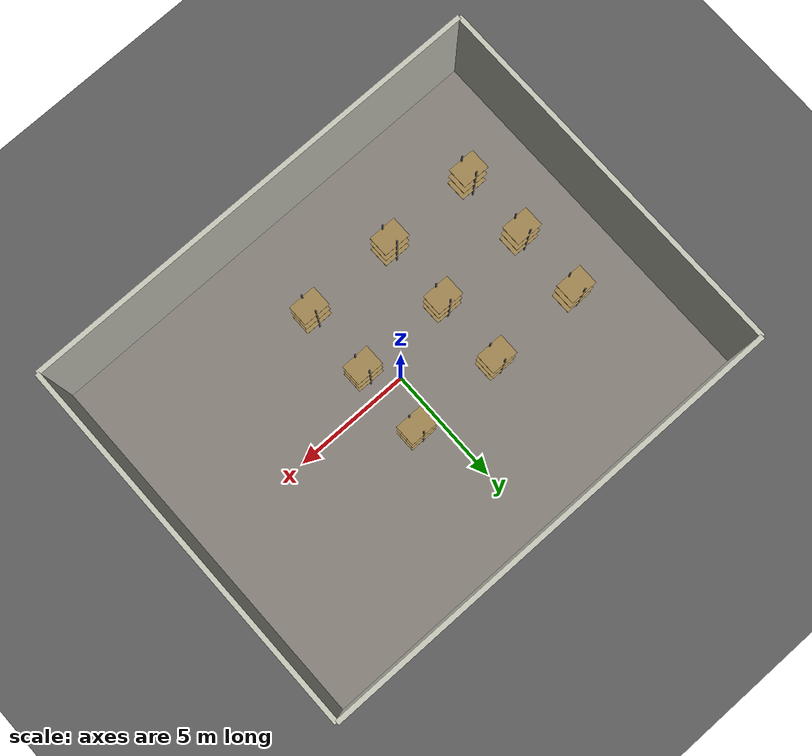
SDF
<?xml version="1.0" ?>
<sdf version="1.8">
  <world name="kiwi_world">

    <!--- physics -->
    <gravity>0 0 -9.81</gravity>
    <physics name="default_physics" type="ode">
      <max_step_size>0.001</max_step_size>
      <real_time_factor>1.0</real_time_factor>
      <real_time_update_rate>1000</real_time_update_rate>
      <ode>
        <solver>
          <type>quick</type>
          <iters>50</iters>
        </solver>
      </ode>
    </physics>

    <!-- plugins  -->
    <plugin filename="gz-sim-physics-system" name="gz::sim::systems::Physics"/>
    <plugin filename="gz-sim-scene-broadcaster-system" name="gz::sim::systems::SceneBroadcaster"/>
    <plugin filename="gz-sim-user-commands-system" name="gz::sim::systems::UserCommands"/>
    <plugin filename="gz-sim-sensors-system" name="gz::sim::systems::Sensors"/>
    <plugin filename="gz-sim-contact-system" name="gz::sim::systems::Contact"/>

    <!-- scene  -->
    <scene>
      <ambient>0.4 0.4 0.4 1</ambient>
      <background>0.2 0.2 0.3 1</background>
    </scene>

    <!-- lighting  -->
    <!-- overhead warehouse ligting -->
    <light type="directional" name="warehouse_light_main">
      <cast_shadows>true</cast_shadows>
      <pose>0 0 12 0 0 0</pose>
      <diffuse>0.85 0.85 0.8 1</diffuse>
      <specular>0.3 0.3 0.3 1</specular>
      <direction>-0.2 0.1 -0.9</direction>
    </light>

    <light type="point" name="warehouse_light_a">
      <pose>-5 -5 7 0 0 0</pose>
      <diffuse>0.6 0.6 0.55 1</diffuse>
      <specular>0.1 0.1 0.1 1</specular>
      <attenuation>
        <range>20</range>
        <constant>0.5</constant>
        <linear>0.01</linear>
        <quadratic>0.001</quadratic>
      </attenuation>
    </light>

    <light type="point" name="warehouse_light_b">
      <pose>5 5 7 0 0 0</pose>
      <diffuse>0.6 0.6 0.55 1</diffuse>
      <specular>0.1 0.1 0.1 1</specular>
      <attenuation>
        <range>20</range>
        <constant>0.5</constant>
        <linear>0.01</linear>
        <quadratic>0.001</quadratic>
      </attenuation>
    </light>

    <!-- ground plane -->
    <model name="ground_plane">
      <static>true</static>
      <link name="link">
        <collision name="collision">
          <geometry>
            <plane>
              <normal>0 0 1</normal>
              <size>100 100</size>
            </plane>
          </geometry>
          <surface>
            <friction>
              <ode>
                <mu>1.0</mu>
                <mu2>1.0</mu2>
              </ode>
            </friction>
          </surface>
        </collision>
        <visual name="visual">
          <geometry>
            <plane>
              <normal>0 0 1</normal>
              <size>100 100</size>
            </plane>
          </geometry>
          <material>
            <ambient>0.3 0.3 0.3 1</ambient>
            <diffuse>0.35 0.35 0.35 1</diffuse>
          </material>
        </visual>
      </link>
    </model>

    <!--  floor  -->
    <model name="warehouse_floor">
      <static>true</static>
      <pose>0 0 0.001 0 0 0</pose>
      <link name="link">
        <visual name="visual">
          <geometry>
            <box><size>20 16 0.001</size></box>
          </geometry>
          <material>
            <ambient>0.45 0.43 0.4 1</ambient>
            <diffuse>0.5 0.48 0.45 1</diffuse>
          </material>
        </visual>
      </link>
    </model>

    <!-- walls -->
    <!-- norht wall -->
    <model name="wall_north">
      <static>true</static>
      <pose>0 8 2.5 0 0 0</pose>
      <link name="link">
        <collision name="collision">
          <geometry>
            <box><size>20 0.2 5</size></box>
          </geometry>
        </collision>
        <visual name="visual">
          <geometry>
            <box><size>20 0.2 5</size></box>
          </geometry>
          <material>
            <ambient>0.7 0.7 0.65 1</ambient>
            <diffuse>0.75 0.75 0.7 1</diffuse>
          </material>
        </visual>
      </link>
    </model>

    <!-- South wall -->
    <model name="wall_south">
      <static>true</static>
      <pose>0 -8 2.5 0 0 0</pose>
      <link name="link">
        <collision name="collision">
          <geometry>
            <box><size>20 0.2 5</size></box>
          </geometry>
        </collision>
        <visual name="visual">
          <geometry>
            <box><size>20 0.2 5</size></box>
          </geometry>
          <material>
            <ambient>0.7 0.7 0.65 1</ambient>
            <diffuse>0.75 0.75 0.7 1</diffuse>
          </material>
        </visual>
      </link>
    </model>

    <!-- East wall -->
    <model name="wall_east">
      <static>true</static>
      <pose>10 0 2.5 0 0 0</pose>
      <link name="link">
        <collision name="collision">
          <geometry>
            <box><size>0.2 16 5</size></box>
          </geometry>
        </collision>
        <visual name="visual">
          <geometry>
            <box><size>0.2 16 5</size></box>
          </geometry>
          <material>
            <ambient>0.7 0.7 0.65 1</ambient>
            <diffuse>0.75 0.75 0.7 1</diffuse>
          </material>
        </visual>
      </link>
    </model>

    <!-- West wall -->
    <model name="wall_west">
      <static>true</static>
      <pose>-10 0 2.5 0 0 0</pose>
      <link name="link">
        <collision name="collision">
          <geometry>
            <box><size>0.2 16 5</size></box>
          </geometry>
        </collision>
        <visual name="visual">
          <geometry>
            <box><size>0.2 16 5</size></box>
          </geometry>
          <material>
            <ambient>0.7 0.7 0.65 1</ambient>
            <diffuse>0.75 0.75 0.7 1</diffuse>
          </material>
        </visual>
      </link>
    </model>

    <!--  shelfing rack row (left side) -->
    <!-- rack A1 -->
    <model name="rack_a1">
      <static>true</static>
      <pose>-7 -4 0 0 0 0</pose>
      <link name="link">
        <!-- Left upright -->
        <visual name="left_upright">
          <pose>0 -0.4 1.5 0 0 0</pose>
          <geometry><box><size>0.05 0.05 3.0</size></box></geometry>
          <material><ambient>0.3 0.3 0.35 1</ambient><diffuse>0.4 0.4 0.45 1</diffuse></material>
        </visual>
        <collision name="left_upright_col">
          <pose>0 -0.4 1.5 0 0 0</pose>
          <geometry><box><size>0.05 0.05 3.0</size></box></geometry>
        </collision>
        <!-- Right upright -->
        <visual name="right_upright">
          <pose>0 0.4 1.5 0 0 0</pose>
          <geometry><box><size>0.05 0.05 3.0</size></box></geometry>
          <material><ambient>0.3 0.3 0.35 1</ambient><diffuse>0.4 0.4 0.45 1</diffuse></material>
        </visual>
        <collision name="right_upright_col">
          <pose>0 0.4 1.5 0 0 0</pose>
          <geometry><box><size>0.05 0.05 3.0</size></box></geometry>
        </collision>
        <!-- Shelf 1 -->
        <visual name="shelf_1">
          <pose>0 0 0.8 0 0 0</pose>
          <geometry><box><size>1.2 0.9 0.03</size></box></geometry>
          <material><ambient>0.5 0.4 0.25 1</ambient><diffuse>0.6 0.5 0.3 1</diffuse></material>
        </visual>
        <collision name="shelf_1_col">
          <pose>0 0 0.8 0 0 0</pose>
          <geometry><box><size>1.2 0.9 0.03</size></box></geometry>
        </collision>
        <!-- Shelf 2 -->
        <visual name="shelf_2">
          <pose>0 0 1.6 0 0 0</pose>
          <geometry><box><size>1.2 0.9 0.03</size></box></geometry>
          <material><ambient>0.5 0.4 0.25 1</ambient><diffuse>0.6 0.5 0.3 1</diffuse></material>
        </visual>
        <collision name="shelf_2_col">
          <pose>0 0 1.6 0 0 0</pose>
          <geometry><box><size>1.2 0.9 0.03</size></box></geometry>
        </collision>
        <!-- Shelf 3 -->
        <visual name="shelf_3">
          <pose>0 0 2.4 0 0 0</pose>
          <geometry><box><size>1.2 0.9 0.03</size></box></geometry>
          <material><ambient>0.5 0.4 0.25 1</ambient><diffuse>0.6 0.5 0.3 1</diffuse></material>
        </visual>
        <collision name="shelf_3_col">
          <pose>0 0 2.4 0 0 0</pose>
          <geometry><box><size>1.2 0.9 0.03</size></box></geometry>
        </collision>
      </link>
    </model>

    <!-- Rack A2 -->
    <model name="rack_a2">
      <static>true</static>
      <pose>-7 -1 0 0 0 0</pose>
      <link name="link">
        <visual name="left_upright">
          <pose>0 -0.4 1.5 0 0 0</pose>
          <geometry><box><size>0.05 0.05 3.0</size></box></geometry>
          <material><ambient>0.3 0.3 0.35 1</ambient><diffuse>0.4 0.4 0.45 1</diffuse></material>
        </visual>
        <collision name="left_upright_col">
          <pose>0 -0.4 1.5 0 0 0</pose>
          <geometry><box><size>0.05 0.05 3.0</size></box></geometry>
        </collision>
        <visual name="right_upright">
          <pose>0 0.4 1.5 0 0 0</pose>
          <geometry><box><size>0.05 0.05 3.0</size></box></geometry>
          <material><ambient>0.3 0.3 0.35 1</ambient><diffuse>0.4 0.4 0.45 1</diffuse></material>
        </visual>
        <collision name="right_upright_col">
          <pose>0 0.4 1.5 0 0 0</pose>
          <geometry><box><size>0.05 0.05 3.0</size></box></geometry>
        </collision>
        <visual name="shelf_1">
          <pose>0 0 0.8 0 0 0</pose>
          <geometry><box><size>1.2 0.9 0.03</size></box></geometry>
          <material><ambient>0.5 0.4 0.25 1</ambient><diffuse>0.6 0.5 0.3 1</diffuse></material>
        </visual>
        <collision name="shelf_1_col">
          <pose>0 0 0.8 0 0 0</pose>
          <geometry><box><size>1.2 0.9 0.03</size></box></geometry>
        </collision>
        <visual name="shelf_2">
          <pose>0 0 1.6 0 0 0</pose>
          <geometry><box><size>1.2 0.9 0.03</size></box></geometry>
          <material><ambient>0.5 0.4 0.25 1</ambient><diffuse>0.6 0.5 0.3 1</diffuse></material>
        </visual>
        <collision name="shelf_2_col">
          <pose>0 0 1.6 0 0 0</pose>
          <geometry><box><size>1.2 0.9 0.03</size></box></geometry>
        </collision>
        <visual name="shelf_3">
          <pose>0 0 2.4 0 0 0</pose>
          <geometry><box><size>1.2 0.9 0.03</size></box></geometry>
          <material><ambient>0.5 0.4 0.25 1</ambient><diffuse>0.6 0.5 0.3 1</diffuse></material>
        </visual>
        <collision name="shelf_3_col">
          <pose>0 0 2.4 0 0 0</pose>
          <geometry><box><size>1.2 0.9 0.03</size></box></geometry>
        </collision>
      </link>
    </model>

    <!-- Rack A3 -->
    <model name="rack_a3">
      <static>true</static>
      <pose>-7 2 0 0 0 0</pose>
      <link name="link">
        <visual name="left_upright">
          <pose>0 -0.4 1.5 0 0 0</pose>
          <geometry><box><size>0.05 0.05 3.0</size></box></geometry>
          <material><ambient>0.3 0.3 0.35 1</ambient><diffuse>0.4 0.4 0.45 1</diffuse></material>
        </visual>
        <collision name="left_upright_col">
          <pose>0 -0.4 1.5 0 0 0</pose>
          <geometry><box><size>0.05 0.05 3.0</size></box></geometry>
        </collision>
        <visual name="right_upright">
          <pose>0 0.4 1.5 0 0 0</pose>
          <geometry><box><size>0.05 0.05 3.0</size></box></geometry>
          <material><ambient>0.3 0.3 0.35 1</ambient><diffuse>0.4 0.4 0.45 1</diffuse></material>
        </visual>
        <collision name="right_upright_col">
          <pose>0 0.4 1.5 0 0 0</pose>
          <geometry><box><size>0.05 0.05 3.0</size></box></geometry>
        </collision>
        <visual name="shelf_1">
          <pose>0 0 0.8 0 0 0</pose>
          <geometry><box><size>1.2 0.9 0.03</size></box></geometry>
          <material><ambient>0.5 0.4 0.25 1</ambient><diffuse>0.6 0.5 0.3 1</diffuse></material>
        </visual>
        <collision name="shelf_1_col">
          <pose>0 0 0.8 0 0 0</pose>
          <geometry><box><size>1.2 0.9 0.03</size></box></geometry>
        </collision>
        <visual name="shelf_2">
          <pose>0 0 1.6 0 0 0</pose>
          <geometry><box><size>1.2 0.9 0.03</size></box></geometry>
          <material><ambient>0.5 0.4 0.25 1</ambient><diffuse>0.6 0.5 0.3 1</diffuse></material>
        </visual>
        <collision name="shelf_2_col">
          <pose>0 0 1.6 0 0 0</pose>
          <geometry><box><size>1.2 0.9 0.03</size></box></geometry>
        </collision>
        <visual name="shelf_3">
          <pose>0 0 2.4 0 0 0</pose>
          <geometry><box><size>1.2 0.9 0.03</size></box></geometry>
          <material><ambient>0.5 0.4 0.25 1</ambient><diffuse>0.6 0.5 0.3 1</diffuse></material>
        </visual>
        <collision name="shelf_3_col">
          <pose>0 0 2.4 0 0 0</pose>
          <geometry><box><size>1.2 0.9 0.03</size></box></geometry>
        </collision>
      </link>
    </model>

    <!-- shelfing rack row b(center) -->
    <!-- rack b1 -->
    <model name="rack_b1">
      <static>true</static>
      <pose>-3 -4 0 0 0 0</pose>
      <link name="link">
        <visual name="left_upright">
          <pose>0 -0.4 1.5 0 0 0</pose>
          <geometry><box><size>0.05 0.05 3.0</size></box></geometry>
          <material><ambient>0.3 0.3 0.35 1</ambient><diffuse>0.4 0.4 0.45 1</diffuse></material>
        </visual>
        <collision name="left_upright_col">
          <pose>0 -0.4 1.5 0 0 0</pose>
          <geometry><box><size>0.05 0.05 3.0</size></box></geometry>
        </collision>
        <visual name="right_upright">
          <pose>0 0.4 1.5 0 0 0</pose>
          <geometry><box><size>0.05 0.05 3.0</size></box></geometry>
          <material><ambient>0.3 0.3 0.35 1</ambient><diffuse>0.4 0.4 0.45 1</diffuse></material>
        </visual>
        <collision name="right_upright_col">
          <pose>0 0.4 1.5 0 0 0</pose>
          <geometry><box><size>0.05 0.05 3.0</size></box></geometry>
        </collision>
        <visual name="shelf_1">
          <pose>0 0 0.8 0 0 0</pose>
          <geometry><box><size>1.2 0.9 0.03</size></box></geometry>
          <material><ambient>0.5 0.4 0.25 1</ambient><diffuse>0.6 0.5 0.3 1</diffuse></material>
        </visual>
        <collision name="shelf_1_col">
          <pose>0 0 0.8 0 0 0</pose>
          <geometry><box><size>1.2 0.9 0.03</size></box></geometry>
        </collision>
        <visual name="shelf_2">
          <pose>0 0 1.6 0 0 0</pose>
          <geometry><box><size>1.2 0.9 0.03</size></box></geometry>
          <material><ambient>0.5 0.4 0.25 1</ambient><diffuse>0.6 0.5 0.3 1</diffuse></material>
        </visual>
        <collision name="shelf_2_col">
          <pose>0 0 1.6 0 0 0</pose>
          <geometry><box><size>1.2 0.9 0.03</size></box></geometry>
        </collision>
        <visual name="shelf_3">
          <pose>0 0 2.4 0 0 0</pose>
          <geometry><box><size>1.2 0.9 0.03</size></box></geometry>
          <material><ambient>0.5 0.4 0.25 1</ambient><diffuse>0.6 0.5 0.3 1</diffuse></material>
        </visual>
        <collision name="shelf_3_col">
          <pose>0 0 2.4 0 0 0</pose>
          <geometry><box><size>1.2 0.9 0.03</size></box></geometry>
        </collision>
      </link>
    </model>

    <!-- Rack B2 -->
    <model name="rack_b2">
      <static>true</static>
      <pose>-3 -1 0 0 0 0</pose>
      <link name="link">
        <visual name="left_upright">
          <pose>0 -0.4 1.5 0 0 0</pose>
          <geometry><box><size>0.05 0.05 3.0</size></box></geometry>
          <material><ambient>0.3 0.3 0.35 1</ambient><diffuse>0.4 0.4 0.45 1</diffuse></material>
        </visual>
        <collision name="left_upright_col">
          <pose>0 -0.4 1.5 0 0 0</pose>
          <geometry><box><size>0.05 0.05 3.0</size></box></geometry>
        </collision>
        <visual name="right_upright">
          <pose>0 0.4 1.5 0 0 0</pose>
          <geometry><box><size>0.05 0.05 3.0</size></box></geometry>
          <material><ambient>0.3 0.3 0.35 1</ambient><diffuse>0.4 0.4 0.45 1</diffuse></material>
        </visual>
        <collision name="right_upright_col">
          <pose>0 0.4 1.5 0 0 0</pose>
          <geometry><box><size>0.05 0.05 3.0</size></box></geometry>
        </collision>
        <visual name="shelf_1">
          <pose>0 0 0.8 0 0 0</pose>
          <geometry><box><size>1.2 0.9 0.03</size></box></geometry>
          <material><ambient>0.5 0.4 0.25 1</ambient><diffuse>0.6 0.5 0.3 1</diffuse></material>
        </visual>
        <collision name="shelf_1_col">
          <pose>0 0 0.8 0 0 0</pose>
          <geometry><box><size>1.2 0.9 0.03</size></box></geometry>
        </collision>
        <visual name="shelf_2">
          <pose>0 0 1.6 0 0 0</pose>
          <geometry><box><size>1.2 0.9 0.03</size></box></geometry>
          <material><ambient>0.5 0.4 0.25 1</ambient><diffuse>0.6 0.5 0.3 1</diffuse></material>
        </visual>
        <collision name="shelf_2_col">
          <pose>0 0 1.6 0 0 0</pose>
          <geometry><box><size>1.2 0.9 0.03</size></box></geometry>
        </collision>
        <visual name="shelf_3">
          <pose>0 0 2.4 0 0 0</pose>
          <geometry><box><size>1.2 0.9 0.03</size></box></geometry>
          <material><ambient>0.5 0.4 0.25 1</ambient><diffuse>0.6 0.5 0.3 1</diffuse></material>
        </visual>
        <collision name="shelf_3_col">
          <pose>0 0 2.4 0 0 0</pose>
          <geometry><box><size>1.2 0.9 0.03</size></box></geometry>
        </collision>
      </link>
    </model>

    <!-- Rack B3 -->
    <model name="rack_b3">
      <static>true</static>
      <pose>-3 2 0 0 0 0</pose>
      <link name="link">
        <visual name="left_upright">
          <pose>0 -0.4 1.5 0 0 0</pose>
          <geometry><box><size>0.05 0.05 3.0</size></box></geometry>
          <material><ambient>0.3 0.3 0.35 1</ambient><diffuse>0.4 0.4 0.45 1</diffuse></material>
        </visual>
        <collision name="left_upright_col">
          <pose>0 -0.4 1.5 0 0 0</pose>
          <geometry><box><size>0.05 0.05 3.0</size></box></geometry>
        </collision>
        <visual name="right_upright">
          <pose>0 0.4 1.5 0 0 0</pose>
          <geometry><box><size>0.05 0.05 3.0</size></box></geometry>
          <material><ambient>0.3 0.3 0.35 1</ambient><diffuse>0.4 0.4 0.45 1</diffuse></material>
        </visual>
        <collision name="right_upright_col">
          <pose>0 0.4 1.5 0 0 0</pose>
          <geometry><box><size>0.05 0.05 3.0</size></box></geometry>
        </collision>
        <visual name="shelf_1">
          <pose>0 0 0.8 0 0 0</pose>
          <geometry><box><size>1.2 0.9 0.03</size></box></geometry>
          <material><ambient>0.5 0.4 0.25 1</ambient><diffuse>0.6 0.5 0.3 1</diffuse></material>
        </visual>
        <collision name="shelf_1_col">
          <pose>0 0 0.8 0 0 0</pose>
          <geometry><box><size>1.2 0.9 0.03</size></box></geometry>
        </collision>
        <visual name="shelf_2">
          <pose>0 0 1.6 0 0 0</pose>
          <geometry><box><size>1.2 0.9 0.03</size></box></geometry>
          <material><ambient>0.5 0.4 0.25 1</ambient><diffuse>0.6 0.5 0.3 1</diffuse></material>
        </visual>
        <collision name="shelf_2_col">
          <pose>0 0 1.6 0 0 0</pose>
          <geometry><box><size>1.2 0.9 0.03</size></box></geometry>
        </collision>
        <visual name="shelf_3">
          <pose>0 0 2.4 0 0 0</pose>
          <geometry><box><size>1.2 0.9 0.03</size></box></geometry>
          <material><ambient>0.5 0.4 0.25 1</ambient><diffuse>0.6 0.5 0.3 1</diffuse></material>
        </visual>
        <collision name="shelf_3_col">
          <pose>0 0 2.4 0 0 0</pose>
          <geometry><box><size>1.2 0.9 0.03</size></box></geometry>
        </collision>
      </link>
    </model>

    <!-- ==================== SHELVING RACK ROW C (right side) ==================== -->
    <model name="rack_c1">
      <static>true</static>
      <pose>1 -4 0 0 0 0</pose>
      <link name="link">
        <visual name="left_upright"><pose>0 -0.4 1.5 0 0 0</pose><geometry><box><size>0.05 0.05 3.0</size></box></geometry><material><ambient>0.3 0.3 0.35 1</ambient><diffuse>0.4 0.4 0.45 1</diffuse></material></visual>
        <collision name="left_upright_col"><pose>0 -0.4 1.5 0 0 0</pose><geometry><box><size>0.05 0.05 3.0</size></box></geometry></collision>
        <visual name="right_upright"><pose>0 0.4 1.5 0 0 0</pose><geometry><box><size>0.05 0.05 3.0</size></box></geometry><material><ambient>0.3 0.3 0.35 1</ambient><diffuse>0.4 0.4 0.45 1</diffuse></material></visual>
        <collision name="right_upright_col"><pose>0 0.4 1.5 0 0 0</pose><geometry><box><size>0.05 0.05 3.0</size></box></geometry></collision>
        <visual name="shelf_1"><pose>0 0 0.8 0 0 0</pose><geometry><box><size>1.2 0.9 0.03</size></box></geometry><material><ambient>0.5 0.4 0.25 1</ambient><diffuse>0.6 0.5 0.3 1</diffuse></material></visual>
        <collision name="shelf_1_col"><pose>0 0 0.8 0 0 0</pose><geometry><box><size>1.2 0.9 0.03</size></box></geometry></collision>
        <visual name="shelf_2"><pose>0 0 1.6 0 0 0</pose><geometry><box><size>1.2 0.9 0.03</size></box></geometry><material><ambient>0.5 0.4 0.25 1</ambient><diffuse>0.6 0.5 0.3 1</diffuse></material></visual>
        <collision name="shelf_2_col"><pose>0 0 1.6 0 0 0</pose><geometry><box><size>1.2 0.9 0.03</size></box></geometry></collision>
        <visual name="shelf_3"><pose>0 0 2.4 0 0 0</pose><geometry><box><size>1.2 0.9 0.03</size></box></geometry><material><ambient>0.5 0.4 0.25 1</ambient><diffuse>0.6 0.5 0.3 1</diffuse></material></visual>
        <collision name="shelf_3_col"><pose>0 0 2.4 0 0 0</pose><geometry><box><size>1.2 0.9 0.03</size></box></geometry></collision>
      </link>
    </model>

    <model name="rack_c2">
      <static>true</static>
      <pose>1 -1 0 0 0 0</pose>
      <link name="link">
        <visual name="left_upright"><pose>0 -0.4 1.5 0 0 0</pose><geometry><box><size>0.05 0.05 3.0</size></box></geometry><material><ambient>0.3 0.3 0.35 1</ambient><diffuse>0.4 0.4 0.45 1</diffuse></material></visual>
        <collision name="left_upright_col"><pose>0 -0.4 1.5 0 0 0</pose><geometry><box><size>0.05 0.05 3.0</size></box></geometry></collision>
        <visual name="right_upright"><pose>0 0.4 1.5 0 0 0</pose><geometry><box><size>0.05 0.05 3.0</size></box></geometry><material><ambient>0.3 0.3 0.35 1</ambient><diffuse>0.4 0.4 0.45 1</diffuse></material></visual>
        <collision name="right_upright_col"><pose>0 0.4 1.5 0 0 0</pose><geometry><box><size>0.05 0.05 3.0</size></box></geometry></collision>
        <visual name="shelf_1"><pose>0 0 0.8 0 0 0</pose><geometry><box><size>1.2 0.9 0.03</size></box></geometry><material><ambient>0.5 0.4 0.25 1</ambient><diffuse>0.6 0.5 0.3 1</diffuse></material></visual>
        <collision name="shelf_1_col"><pose>0 0 0.8 0 0 0</pose><geometry><box><size>1.2 0.9 0.03</size></box></geometry></collision>
        <visual name="shelf_2"><pose>0 0 1.6 0 0 0</pose><geometry><box><size>1.2 0.9 0.03</size></box></geometry><material><ambient>0.5 0.4 0.25 1</ambient><diffuse>0.6 0.5 0.3 1</diffuse></material></visual>
        <collision name="shelf_2_col"><pose>0 0 1.6 0 0 0</pose><geometry><box><size>1.2 0.9 0.03</size></box></geometry></collision>
        <visual name="shelf_3"><pose>0 0 2.4 0 0 0</pose><geometry><box><size>1.2 0.9 0.03</size></box></geometry><material><ambient>0.5 0.4 0.25 1</ambient><diffuse>0.6 0.5 0.3 1</diffuse></material></visual>
        <collision name="shelf_3_col"><pose>0 0 2.4 0 0 0</pose><geometry><box><size>1.2 0.9 0.03</size></box></geometry></collision>
      </link>
    </model>

    <model name="rack_c3">
      <static>true</static>
      <pose>1 2 0 0 0 0</pose>
      <link name="link">
        <visual name="left_upright"><pose>0 -0.4 1.5 0 0 0</pose><geometry><box><size>0.05 0.05 3.0</size></box></geometry><material><ambient>0.3 0.3 0.35 1</ambient><diffuse>0.4 0.4 0.45 1</diffuse></material></visual>
        <collision name="left_upright_col"><pose>0 -0.4 1.5 0 0 0</pose><geometry><box><size>0.05 0.05 3.0</size></box></geometry></collision>
        <visual name="right_upright"><pose>0 0.4 1.5 0 0 0</pose><geometry><box><size>0.05 0.05 3.0</size></box></geometry><material><ambient>0.3 0.3 0.35 1</ambient><diffuse>0.4 0.4 0.45 1</diffuse></material></visual>
        <collision name="right_upright_col"><pose>0 0.4 1.5 0 0 0</pose><geometry><box><size>0.05 0.05 3.0</size></box></geometry></collision>
        <visual name="shelf_1"><pose>0 0 0.8 0 0 0</pose><geometry><box><size>1.2 0.9 0.03</size></box></geometry><material><ambient>0.5 0.4 0.25 1</ambient><diffuse>0.6 0.5 0.3 1</diffuse></material></visual>
        <collision name="shelf_1_col"><pose>0 0 0.8 0 0 0</pose><geometry><box><size>1.2 0.9 0.03</size></box></geometry></collision>
        <visual name="shelf_2"><pose>0 0 1.6 0 0 0</pose><geometry><box><size>1.2 0.9 0.03</size></box></geometry><material><ambient>0.5 0.4 0.25 1</ambient><diffuse>0.6 0.5 0.3 1</diffuse></material></visual>
        <collision name="shelf_2_col"><pose>0 0 1.6 0 0 0</pose><geometry><box><size>1.2 0.9 0.03</size></box></geometry></collision>
        <visual name="shelf_3"><pose>0 0 2.4 0 0 0</pose><geometry><box><size>1.2 0.9 0.03</size></box></geometry><material><ambient>0.5 0.4 0.25 1</ambient><diffuse>0.6 0.5 0.3 1</diffuse></material></visual>
        <collision name="shelf_3_col"><pose>0 0 2.4 0 0 0</pose><geometry><box><size>1.2 0.9 0.03</size></box></geometry></collision>
      </link>
    </model>

    <model name="render_confirm_cam">
      <static>true</static>
      <pose>3 0 2 0 0.34 3.14159</pose>
      <link name="link">
        <sensor type="camera" name="render_confirm_camera">
          <topic>/render_confirm/camera</topic>
          <always_on>1</always_on>
          <update_rate>30</update_rate>
          <camera>
            <horizontal_fov>1.0472</horizontal_fov>
            <image>
              <width>800</width>
              <height>600</height>
              <format>R8G8B8</format>
            </image>
            <clip>
              <near>0.05</near>
              <far>100</far>
            </clip>
          </camera>
        </sensor>
      </link>
    </model>
</world>
</sdf>
